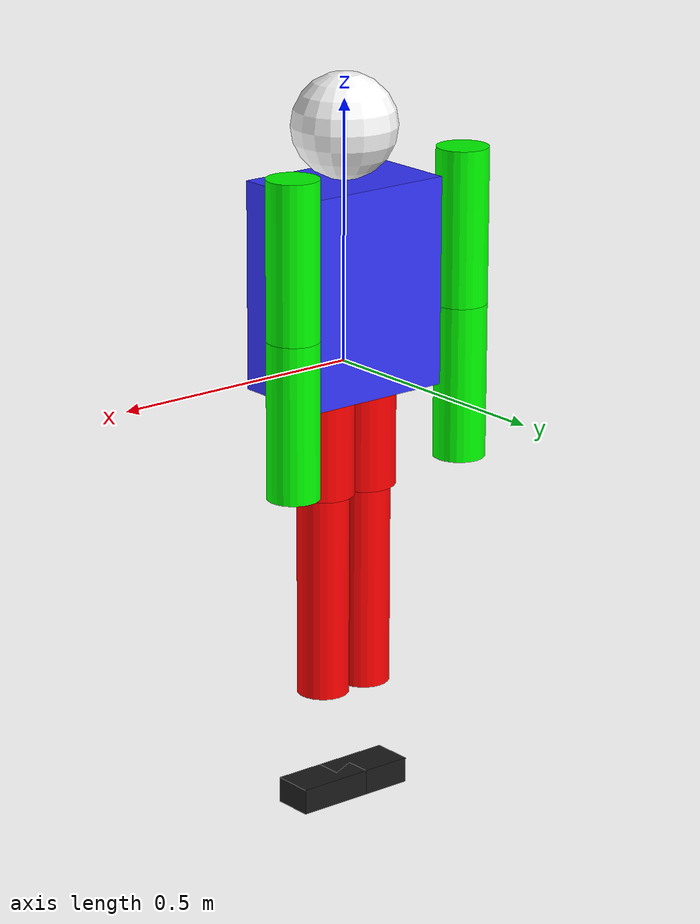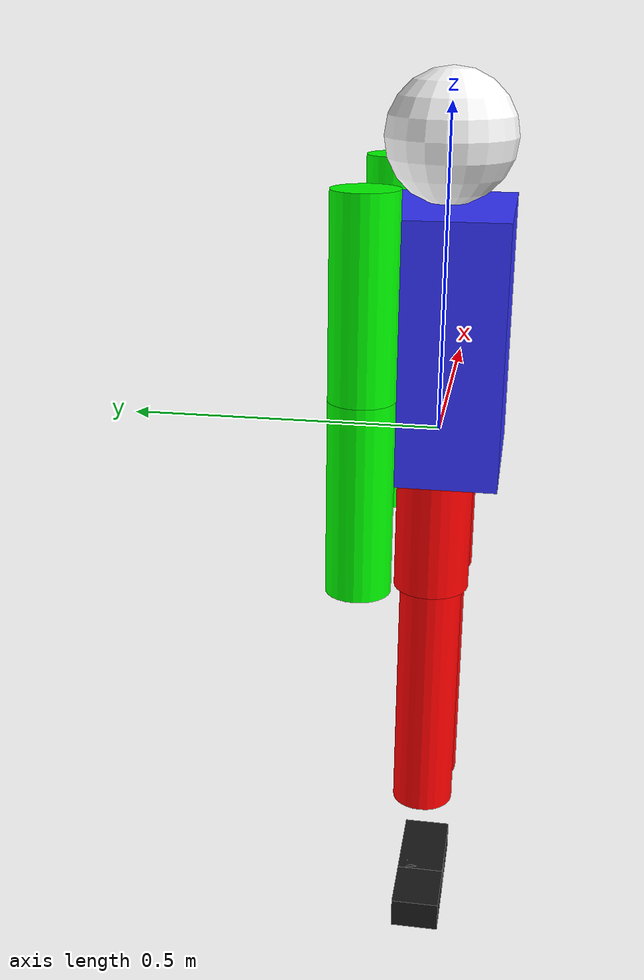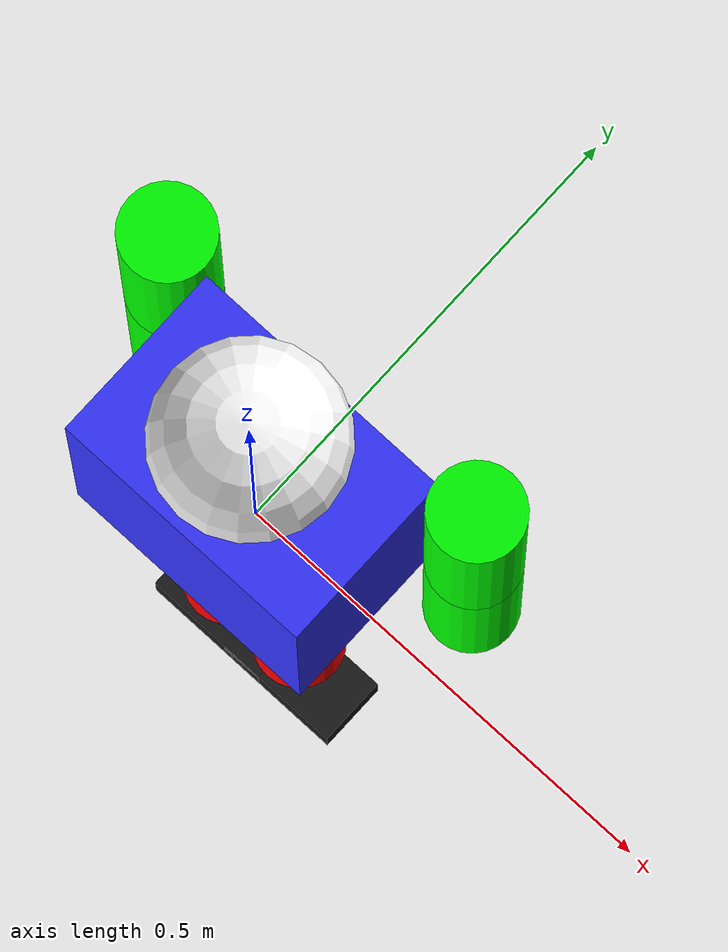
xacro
<?xml version="1.0"?>
<robot xmlns:xacro="http://www.ros.org/wiki/xacro" name="humanoid_robot">
  <!-- Include IMU configuration -->
  <xacro:include filename="imu_config.xacro" />

  <!-- Base Link -->
  <link name="base_link">
    <visual>
      <geometry>
        <box size="0.2 0.1 0.1"/>
      </geometry>
      <material name="gray">
        <color rgba="0.5 0.5 0.5 1.0"/>
      </material>
    </visual>
    <collision>
      <geometry>
        <box size="0.2 0.1 0.1"/>
      </geometry>
    </collision>
    <inertial>
      <mass value="5.0"/>
      <inertia ixx="0.1" ixy="0.0" ixz="0.0" iyy="0.1" iyz="0.0" izz="0.1"/>
    </inertial>
  </link>

  <!-- Torso -->
  <joint name="torso_joint" type="fixed">
    <parent link="base_link"/>
    <child link="torso"/>
    <origin xyz="0 0 0.15"/>
  </joint>

  <link name="torso">
    <visual>
      <geometry>
        <box size="0.3 0.2 0.4"/>
      </geometry>
      <material name="blue">
        <color rgba="0.2 0.2 1.0 1.0"/>
      </material>
    </visual>
    <collision>
      <geometry>
        <box size="0.3 0.2 0.4"/>
      </geometry>
    </collision>
    <inertial>
      <mass value="10.0"/>
      <inertia ixx="0.2" ixy="0.0" ixz="0.0" iyy="0.2" iyz="0.0" izz="0.2"/>
    </inertial>
  </link>

  <!-- Head -->
  <joint name="head_joint" type="fixed">
    <parent link="torso"/>
    <child link="head"/>
    <origin xyz="0 0 0.3"/>
  </joint>

  <link name="head">
    <visual>
      <geometry>
        <sphere radius="0.1"/>
      </geometry>
      <material name="white">
        <color rgba="1.0 1.0 1.0 1.0"/>
      </material>
    </visual>
    <collision>
      <geometry>
        <sphere radius="0.1"/>
      </geometry>
    </collision>
    <inertial>
      <mass value="2.0"/>
      <inertia ixx="0.02" ixy="0.0" ixz="0.0" iyy="0.02" iyz="0.0" izz="0.02"/>
    </inertial>
  </link>

  <!-- IMU sensor in the head -->
  <xacro:imu_sensor name="imu" parent_link="head" topic="/imu/data"/>

  <!-- Left Arm -->
  <joint name="left_shoulder_joint" type="revolute">
    <parent link="torso"/>
    <child link="left_upper_arm"/>
    <origin xyz="0.2 0.1 0.1"/>
    <axis xyz="0 1 0"/>
    <limit lower="-1.57" upper="1.57" effort="10.0" velocity="1.0"/>
  </joint>

  <link name="left_upper_arm">
    <visual>
      <geometry>
        <cylinder length="0.3" radius="0.05"/>
      </geometry>
      <material name="green">
        <color rgba="0.0 1.0 0.0 1.0"/>
      </material>
    </visual>
    <collision>
      <geometry>
        <cylinder length="0.3" radius="0.05"/>
      </geometry>
    </collision>
    <inertial>
      <mass value="2.0"/>
      <inertia ixx="0.01" ixy="0.0" ixz="0.0" iyy="0.01" iyz="0.0" izz="0.01"/>
    </inertial>
  </link>

  <joint name="left_elbow_joint" type="revolute">
    <parent link="left_upper_arm"/>
    <child link="left_lower_arm"/>
    <origin xyz="0 0 -0.3"/>
    <axis xyz="0 1 0"/>
    <limit lower="-1.57" upper="1.57" effort="10.0" velocity="1.0"/>
  </joint>

  <link name="left_lower_arm">
    <visual>
      <geometry>
        <cylinder length="0.3" radius="0.05"/>
      </geometry>
      <material name="green">
        <color rgba="0.0 1.0 0.0 1.0"/>
      </material>
    </visual>
    <collision>
      <geometry>
        <cylinder length="0.3" radius="0.05"/>
      </geometry>
    </collision>
    <inertial>
      <mass value="1.5"/>
      <inertia ixx="0.01" ixy="0.0" ixz="0.0" iyy="0.01" iyz="0.0" izz="0.01"/>
    </inertial>
  </link>

  <!-- Right Arm -->
  <joint name="right_shoulder_joint" type="revolute">
    <parent link="torso"/>
    <child link="right_upper_arm"/>
    <origin xyz="-0.2 0.1 0.1"/>
    <axis xyz="0 1 0"/>
    <limit lower="-1.57" upper="1.57" effort="10.0" velocity="1.0"/>
  </joint>

  <link name="right_upper_arm">
    <visual>
      <geometry>
        <cylinder length="0.3" radius="0.05"/>
      </geometry>
      <material name="green">
        <color rgba="0.0 1.0 0.0 1.0"/>
      </material>
    </visual>
    <collision>
      <geometry>
        <cylinder length="0.3" radius="0.05"/>
      </geometry>
    </collision>
    <inertial>
      <mass value="2.0"/>
      <inertia ixx="0.01" ixy="0.0" ixz="0.0" iyy="0.01" iyz="0.0" izz="0.01"/>
    </inertial>
  </link>

  <joint name="right_elbow_joint" type="revolute">
    <parent link="right_upper_arm"/>
    <child link="right_lower_arm"/>
    <origin xyz="0 0 -0.3"/>
    <axis xyz="0 1 0"/>
    <limit lower="-1.57" upper="1.57" effort="10.0" velocity="1.0"/>
  </joint>

  <link name="right_lower_arm">
    <visual>
      <geometry>
        <cylinder length="0.3" radius="0.05"/>
      </geometry>
      <material name="green">
        <color rgba="0.0 1.0 0.0 1.0"/>
      </material>
    </visual>
    <collision>
      <geometry>
        <cylinder length="0.3" radius="0.05"/>
      </geometry>
    </collision>
    <inertial>
      <mass value="1.5"/>
      <inertia ixx="0.01" ixy="0.0" ixz="0.0" iyy="0.01" iyz="0.0" izz="0.01"/>
    </inertial>
  </link>

  <!-- Left Leg -->
  <joint name="left_hip_joint" type="revolute">
    <parent link="base_link"/>
    <child link="left_upper_leg"/>
    <origin xyz="0.05 0 -0.05"/>
    <axis xyz="0 1 0"/>
    <limit lower="-1.57" upper="1.57" effort="10.0" velocity="1.0"/>
  </joint>

  <link name="left_upper_leg">
    <visual>
      <geometry>
        <cylinder length="0.4" radius="0.06"/>
      </geometry>
      <material name="red">
        <color rgba="1.0 0.0 0.0 1.0"/>
      </material>
    </visual>
    <collision>
      <geometry>
        <cylinder length="0.4" radius="0.06"/>
      </geometry>
    </collision>
    <inertial>
      <mass value="3.0"/>
      <inertia ixx="0.02" ixy="0.0" ixz="0.0" iyy="0.02" iyz="0.0" izz="0.02"/>
    </inertial>
  </link>

  <joint name="left_knee_joint" type="revolute">
    <parent link="left_upper_leg"/>
    <child link="left_lower_leg"/>
    <origin xyz="0 0 -0.4"/>
    <axis xyz="0 1 0"/>
    <limit lower="-1.57" upper="1.57" effort="10.0" velocity="1.0"/>
  </joint>

  <link name="left_lower_leg">
    <visual>
      <geometry>
        <cylinder length="0.4" radius="0.05"/>
      </geometry>
      <material name="red">
        <color rgba="1.0 0.0 0.0 1.0"/>
      </material>
    </visual>
    <collision>
      <geometry>
        <cylinder length="0.4" radius="0.05"/>
      </geometry>
    </collision>
    <inertial>
      <mass value="2.5"/>
      <inertia ixx="0.01" ixy="0.0" ixz="0.0" iyy="0.01" iyz="0.0" izz="0.01"/>
    </inertial>
  </link>

  <joint name="left_ankle_joint" type="fixed">
    <parent link="left_lower_leg"/>
    <child link="left_foot"/>
    <origin xyz="0 0 -0.4"/>
  </joint>

  <link name="left_foot">
    <visual>
      <geometry>
        <box size="0.15 0.08 0.05"/>
      </geometry>
      <material name="black">
        <color rgba="0.1 0.1 0.1 1.0"/>
      </material>
    </visual>
    <collision>
      <geometry>
        <box size="0.15 0.08 0.05"/>
      </geometry>
    </collision>
    <inertial>
      <mass value="1.0"/>
      <inertia ixx="0.001" ixy="0.0" ixz="0.0" iyy="0.001" iyz="0.0" izz="0.001"/>
    </inertial>
  </link>

  <!-- Right Leg -->
  <joint name="right_hip_joint" type="revolute">
    <parent link="base_link"/>
    <child link="right_upper_leg"/>
    <origin xyz="-0.05 0 -0.05"/>
    <axis xyz="0 1 0"/>
    <limit lower="-1.57" upper="1.57" effort="10.0" velocity="1.0"/>
  </joint>

  <link name="right_upper_leg">
    <visual>
      <geometry>
        <cylinder length="0.4" radius="0.06"/>
      </geometry>
      <material name="red">
        <color rgba="1.0 0.0 0.0 1.0"/>
      </material>
    </visual>
    <collision>
      <geometry>
        <cylinder length="0.4" radius="0.06"/>
      </geometry>
    </collision>
    <inertial>
      <mass value="3.0"/>
      <inertia ixx="0.02" ixy="0.0" ixz="0.0" iyy="0.02" iyz="0.0" izz="0.02"/>
    </inertial>
  </link>

  <joint name="right_knee_joint" type="revolute">
    <parent link="right_upper_leg"/>
    <child link="right_lower_leg"/>
    <origin xyz="0 0 -0.4"/>
    <axis xyz="0 1 0"/>
    <limit lower="-1.57" upper="1.57" effort="10.0" velocity="1.0"/>
  </joint>

  <link name="right_lower_leg">
    <visual>
      <geometry>
        <cylinder length="0.4" radius="0.05"/>
      </geometry>
      <material name="red">
        <color rgba="1.0 0.0 0.0 1.0"/>
      </material>
    </visual>
    <collision>
      <geometry>
        <cylinder length="0.4" radius="0.05"/>
      </geometry>
    </collision>
    <inertial>
      <mass value="2.5"/>
      <inertia ixx="0.01" ixy="0.0" ixz="0.0" iyy="0.01" iyz="0.0" izz="0.01"/>
    </inertial>
  </link>

  <joint name="right_ankle_joint" type="fixed">
    <parent link="right_lower_leg"/>
    <child link="right_foot"/>
    <origin xyz="0 0 -0.4"/>
  </joint>

  <link name="right_foot">
    <visual>
      <geometry>
        <box size="0.15 0.08 0.05"/>
      </geometry>
      <material name="black">
        <color rgba="0.1 0.1 0.1 1.0"/>
      </material>
    </visual>
    <collision>
      <geometry>
        <box size="0.15 0.08 0.05"/>
      </geometry>
    </collision>
    <inertial>
      <mass value="1.0"/>
      <inertia ixx="0.001" ixy="0.0" ixz="0.0" iyy="0.001" iyz="0.0" izz="0.001"/>
    </inertial>
  </link>
</robot>
